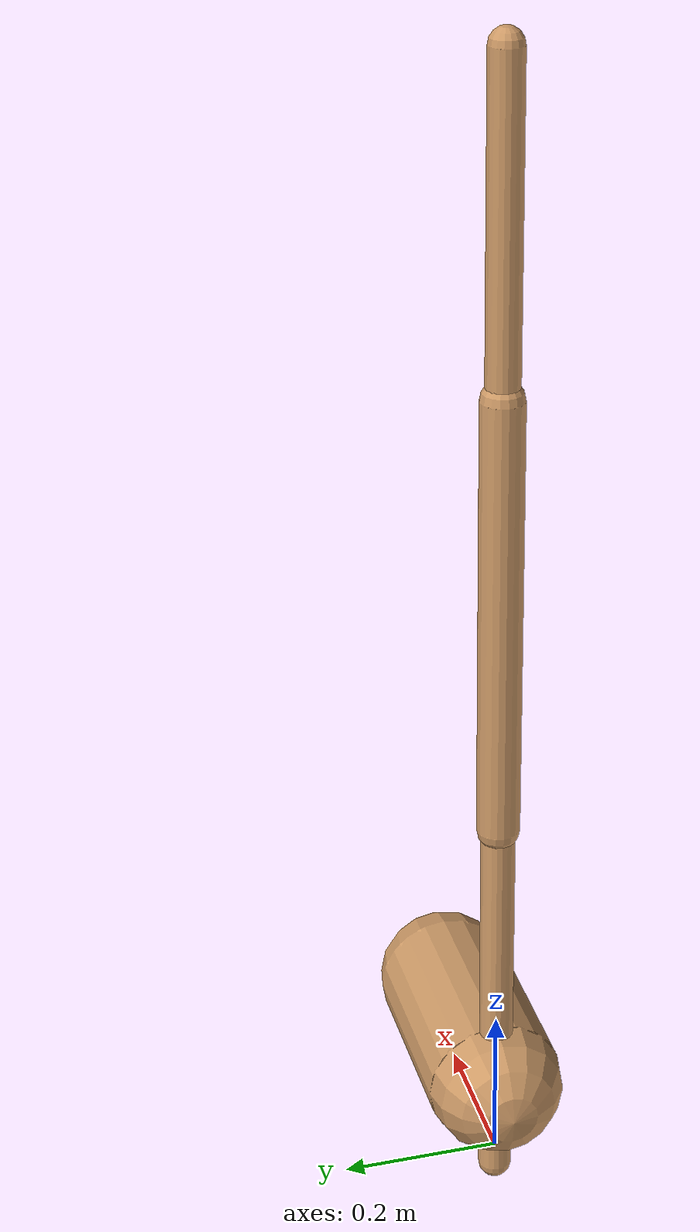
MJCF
<mujoco model="walker2d">
  <compiler angle="degree" coordinate="global" inertiafromgeom="true" />
  <default>
    <joint armature="0.01" damping=".1" limited="true" />
    <geom conaffinity="0" condim="3" contype="1" density="1000" friction="0.8 .1 .1" rgba="0.8 0.6 .4 1" />
  </default>
  <option integrator="RK4" timestep="0.002" />
  <worldbody>

    <body name="torso" pos="0 0 0.2388134802382358">
      <joint armature="0" axis="1 0 0" damping="0" limited="false" name="ignorex" pos="0 0 0" stiffness="0" type="slide" />
      <joint armature="0" axis="0 0 1" damping="0" limited="false" name="ignorez" pos="0 0 0" ref="1.25" stiffness="0" type="slide" />
      <joint armature="0" axis="0 1 0" damping="0" limited="false" name="ignorey" pos="0 0 0" stiffness="0" type="hinge" />
      <geom fromto="0 0 1.45 0 0 1.05" name="torso_geom" size="0.020786891422829485" type="capsule" />
      <body name="thigh">
        <joint axis="0 -1 0" name="thigh_joint" pos="0 0 1.05" range="-150 0" type="hinge" />
        <geom fromto="0.0 0.0 1.05 0.0 0.0 0.4868778251503093" name="thigh_geom" size="0.02674910806796593" type="capsule" />
        <body name="leg" pos="0.0 0.0 -0.11312217484969067">
          <joint axis="0 -1 0" name="leg_joint" pos="0 0 0.6" range="-150 0" type="hinge" />
          <geom fromto="0.0 0.0 0.6 0.0 0.0 -0.025691305388545138" name="leg_geom" size="0.02139928645437274" type="capsule" />
          <body name="foot" pos="0.0 0.0 -0.12569130538854514">
            <joint axis="0 -1 0" name="foot_joint" pos="0 0 0.1" range="-45 45" type="hinge" />
            <geom fromto="-0.0 0.0 0.1 0.2507273940105611 0.0 0.1" name="foot_geom" size="0.08769398670236381" type="capsule" />
          </body>
        </body>
      </body>

      <body name="thigh_left">
        <joint axis="0 -1 0" name="thigh_left_joint" pos="0 0 1.05" range="-150 0" type="hinge" />
        <geom fromto="0.0 0.0 1.05 0.0 0.0 0.4868778251503093" name="thigh_left_geom" rgba=".7 .3 .6 1" size="0.02674910806796593" type="capsule" />
        <body name="leg_left" pos="0.0 0.0 -0.11312217484969067">
          <joint axis="0 -1 0" name="leg_left_joint" pos="0 0 0.6" range="-150 0" type="hinge" />
          <geom fromto="0.0 0.0 0.6 0.0 0.0 -0.025691305388545138" name="leg_left_geom" rgba=".7 .3 .6 1" size="0.02139928645437274" type="capsule" />
          <body name="foot_left" pos="0.0 0.0 -0.12569130538854514">
            <joint axis="0 -1 0" name="foot_left_joint" pos="0 0 0.1" range="-45 45" type="hinge" />
            <geom fromto="-0.0 0.0 0.1 0.2507273940105611 0.0 0.1" name="foot_left_geom" rgba=".7 .3 .6 1" size="0.08769398670236381" type="capsule" />
          </body>
        </body>
      </body>
    </body>
  </worldbody>
  <actuator>

    <motor ctrllimited="true" ctrlrange="-1.0 1.0" gear="100" joint="thigh_joint" />
    <motor ctrllimited="true" ctrlrange="-1.0 1.0" gear="100" joint="leg_joint" />
    <motor ctrllimited="true" ctrlrange="-1.0 1.0" gear="100" joint="foot_joint" />
    <motor ctrllimited="true" ctrlrange="-1.0 1.0" gear="100" joint="thigh_left_joint" />
    <motor ctrllimited="true" ctrlrange="-1.0 1.0" gear="100" joint="leg_left_joint" />
    <motor ctrllimited="true" ctrlrange="-1.0 1.0" gear="100" joint="foot_left_joint" />

  </actuator>
</mujoco>
